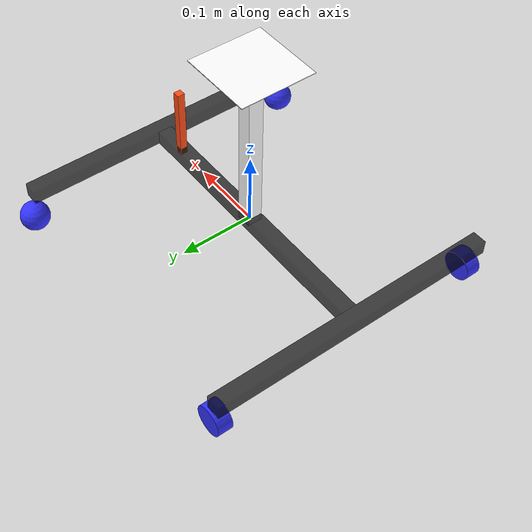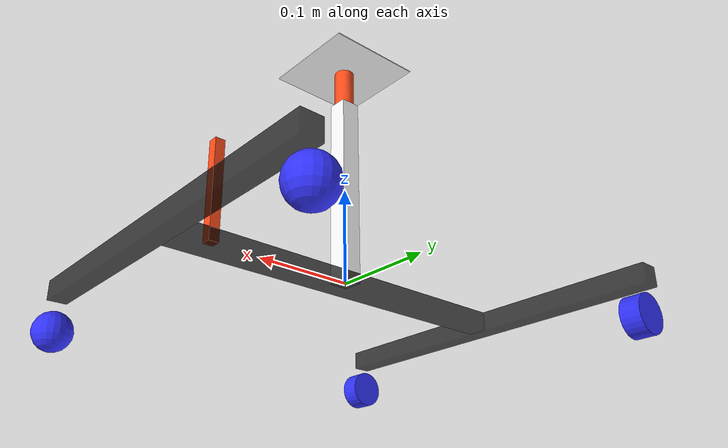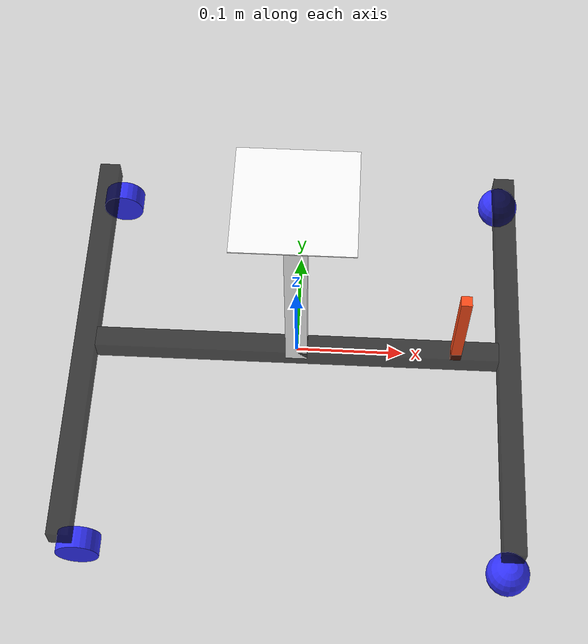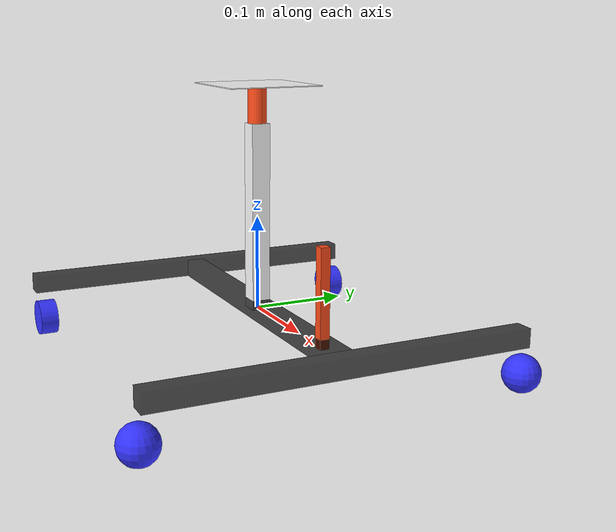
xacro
<?xml version="1.0"?>
<robot xmlns:xacro="http://www.ros.org/wiki/xacro">
   <xacro:include filename="inertial_macros.xacro"/>

    <material name="white">
        <color rgba="1 1 1 1"/>
    </material>

    <material name="orange">
        <color rgba="1 0.3 0.1 1"/>
    </material>

    <material name="blue">
        <color rgba="0.2 0.2 1 1"/>
    </material>

    <material name="black">
        <color rgba="0 0 0 0.7"/>
    </material>

    <!-- BASE LINK -->

    <link name="base_link">

    </link>

    <!-- CHASSIS LINK -->

    <joint name="chassis_joint" type="fixed">
        <parent link="base_link"/>
        <child link="chassis"/>
        <origin xyz="-0.19 0 0"/>
    </joint>

    <link name="chassis">
        <visual>
            <origin xyz="0.19 0 0"/>
            <geometry>
                <box size="0.38 0.02 0.02"/>
            </geometry>
            <material name="black"/>
        </visual>
        <collision>
            <origin xyz="0.19 0 0"/>
            <geometry>
                <box size="0.38 0.02 0.02"/>
            </geometry>
        </collision>
        <xacro:inertial_box mass="0.5" x="0.5" y="0.5" z="0.02">
            <origin xyz="0.19 0 0.01" rpy="0 0 0"/>
        </xacro:inertial_box>
    </link>
    <gazebo reference="chassis">
       <material>Gazebo/Black</material>
    </gazebo>

  <!-- FRONT CHASSIS LINK -->

    <joint name="front_chassis_joint" type="fixed">
        <parent link="base_link"/>
        <child link="front_chassis"/>
        <origin xyz="0.2 0 0"/>
    </joint>

    <link name="front_chassis">
        <visual>
            <origin xyz="0 0 0"/>
            <geometry>
                <box size="0.02 0.4 0.02"/>
            </geometry>
            <material name="black"/>
        </visual>
        <collision>
            <origin xyz="0 0 0"/>
            <geometry>
                <box size="0.02 0.4 0.02"/>
            </geometry>
        </collision>
        <xacro:inertial_box mass="0.5" x="0.5" y="0.5" z="0.02">
            <origin xyz="0 0 0.01" rpy="0 0 0"/>
        </xacro:inertial_box>
    </link>
    <gazebo reference="front_chassis">
       <material>Gazebo/Black</material>
    </gazebo>

     <!--BACK CHASSIS LINK -->

    <joint name="back_chassis_joint" type="fixed">
        <parent link="base_link"/>
        <child link="back_chassis"/>
        <origin xyz="-0.2 0 0"/>
    </joint>

    <link name="back_chassis">
        <visual>
            <origin xyz="0 0 0"/>
            <geometry>
                <box size="0.02 0.4 0.02"/>
            </geometry>
            <material name="black"/>
        </visual>
        <collision>
            <origin xyz="0 0 0"/>
            <geometry>
                <box size="0.02 0.4 0.02"/>
            </geometry>
        </collision>
        <xacro:inertial_box mass="0.5" x="0.5" y="0.5" z="0.02">
            <origin xyz="0 0 0.01" rpy="0 0 0"/>
        </xacro:inertial_box>
    </link>
    <gazebo reference="back_chassis">
       <material>Gazebo/Black</material>
    </gazebo>

     <!-- ROBOT BASE LINK -->

    <joint name="base_joint" type="fixed">
        <parent link="base_link"/>
        <child link="base"/>
        <origin xyz="0 0 0.2"/>
    </joint>

    <link name="base">
        <visual>
            <origin xyz="0 0 -0.1"/>
            <geometry>
                <box size="0.02 0.02 0.2"/>
            </geometry>
            <material name="white"/>
        </visual>
        <collision>
            <origin xyz="0 0 -0.1"/>
            <geometry>
                <box size="0.02 0.02 0.2"/>
            </geometry>
        </collision>
        <xacro:inertial_box mass="0.1" x="0.02" y="0.02" z="0.2">
            <origin xyz="0 0 0.1" rpy="0 0 0"/>
        </xacro:inertial_box>
    </link>
    <gazebo reference="base">
       <material>Gazebo/White</material>
    </gazebo>

    <!-- ROBOT ROLL LINK -->

    <joint name="roll_joint" type="revolute">
        <parent link="base"/>
        <child link="roll"/>
        <origin xyz="0 0 0"/>
        <limit lower="-1" upper="1" effort="10" velocity="3"/>
        <axis xyz="1 0 0"/>
    </joint>

    <link name="roll">
        <visual>
            <origin xyz="0 0 0"/>
            <geometry>
                <box size="0 0 0"/>
            </geometry>
            <material name="white"/>
        </visual>
        <collision>
            <origin xyz="0 0 0"/>
            <geometry>
                <box size="0 0 0"/>
            </geometry>
        </collision>
        <xacro:inertial_box mass="0.09" x="0.05" y="0.02" z="0.02">
            <origin xyz="0.05 0 0" rpy="0 0 0"/>
        </xacro:inertial_box>
    </link>
    <gazebo reference="roll">
       <material>Gazebo/White</material>
    </gazebo>

    <!-- ROBOT PITCH LINK -->

    <joint name="pitch_joint" type="revolute">
        <parent link="roll"/>
        <child link="pitch"/>
        <origin xyz="0 0 0"/>
        <limit lower="-1" upper="1" effort="10" velocity="3"/>
        <axis xyz="0 1 0"/>
    </joint>

    <link name="pitch">
        <visual>
            <origin xyz="0 0 0"/>
            <geometry>
                <box size="0 0 0"/>
            </geometry>
            <material name="white"/>
        </visual>
        <collision>
            <origin xyz="0 0 0"/>
            <geometry>
                <box size="0 0 0"/>
            </geometry>
        </collision>
        <xacro:inertial_box mass="0.09" x="0.02" y="0.05" z="0.02">
            <origin xyz="0 0.05 0" rpy="0 0 0"/>
        </xacro:inertial_box>
    </link>
    <gazebo reference="pitch">
       <material>Gazebo/White</material>
    </gazebo>

        <!-- ROBOT Yaw LINK -->

    <joint name="yaw_joint" type="continuous">
        <parent link="pitch"/>
        <child link="yaw"/>
        <origin xyz="0 0 0.04"/>
        <axis xyz="0 0 1"/>
    </joint>

    <link name="yaw">
        <visual>
            <origin xyz="0 0 -0.02"/>
            <geometry>
                <cylinder radius="0.01" length="0.04"/>
            </geometry>
            <material name="orange"/>
        </visual>
        <collision>
            <origin xyz="0 0 -0.02"/>
            <geometry>
                <cylinder radius="0.01" length="0.04"/>
            </geometry>
        </collision>
        <xacro:inertial_cylinder mass="0.01" length="0.04" radius="0.01">
            <origin xyz="0 0 0" rpy="0 0 0"/>
        </xacro:inertial_cylinder>
    </link>
    <gazebo reference="yaw">
       <material>Gazebo/Orange</material>
    </gazebo>

         <!-- ROBOT PLATE LINK -->

    <joint name="plate_joint" type="fixed">
        <parent link="yaw"/>
        <child link="plate"/>
        <origin xyz="0 0 0"/>
    </joint>

    <link name="plate">
        <visual>
            <origin xyz="0 0 0"/>
            <geometry>
                <box size="0.1 0.1 0.001"/>
            </geometry>
            <material name="white"/>
        </visual>
        <collision>
            <origin xyz="0 0 0"/>
            <geometry>
                <box size="0.1 0.1 0.001"/>
            </geometry>
        </collision>
        <xacro:inertial_box mass="0.09" x="0.02" y="0.05" z="0.02">
            <origin xyz="0 0.05 0" rpy="0 0 0"/>
        </xacro:inertial_box>
    </link>
    <gazebo reference="plate">
       <material>Gazebo/White</material>
    </gazebo>

    <!-- CAMERA BASE LINK -->

    <joint name="camera_base_joint" type="fixed">
        <parent link="base_link"/>
        <child link="camera_base"/>
        <origin xyz="0.15 0 0.1"/>
    </joint>

    <link name="camera_base">
        <visual>
            <origin xyz="0 0 -0.05"/>
            <geometry>
                <box size="0.01 0.01 0.1"/>
            </geometry>
            <material name="orange"/>
        </visual>
        <collision>
            <origin xyz="0 0 -0.05"/>
            <geometry>
                <box size="0.01 0.01 0.1"/>
            </geometry>
        </collision>
        <xacro:inertial_box mass="0.05" x="0.02" y="0.02" z="0.1">
            <origin xyz="0 0 0.05" rpy="0 0 0"/>
        </xacro:inertial_box>
    </link>
    <gazebo reference="camera_base">
       <material>Gazebo/Orange</material>
    </gazebo>

     <!-- LEFT WHEEL LINK -->

    <joint name="left_wheel_joint" type="continuous">
        <parent link="chassis"/>
        <child link="left_wheel"/>
        <origin xyz="0 0.19 -0.04" rpy="-${pi/2} 0 0"/>
        <axis xyz="0 0 1"/>
    </joint>

    <link name="left_wheel">
        <visual>
            <geometry>
                <cylinder radius="0.02" length="0.02"/>
            </geometry>
            <material name="blue"/>
        </visual>
        <collision>
            <geometry>
                <cylinder radius="0.02" length="0.02"/>
            </geometry>
        </collision>
        <xacro:inertial_cylinder mass="0.1" length="0.02" radius="0.02">
            <origin xyz="0 0 0" rpy="0 0 0"/>
        </xacro:inertial_cylinder>

    </link>
    <gazebo reference="left_wheel">
       <material>Gazebo/Blue</material>
    </gazebo>

    <!-- RIGHT WHEEL LINK -->

    <joint name="right_wheel_joint" type="continuous">
        <parent link="chassis"/>
        <child link="right_wheel"/>
        <origin xyz="0 -0.19 -0.04" rpy="${pi/2} 0 0" />
        <axis xyz="0 0 -1"/>
    </joint>

    <link name="right_wheel">
        <visual>
            <geometry>
                <cylinder radius="0.02" length="0.02"/>
            </geometry>
            <material name="blue"/>
        </visual>
        <collision>
            <geometry>
                <cylinder radius="0.02" length="0.02"/>
            </geometry>
        </collision>
        <xacro:inertial_cylinder mass="0.1" length="0.02" radius="0.02">
            <origin xyz="0 0 0" rpy="0 0 0"/>
        </xacro:inertial_cylinder>

    </link>
    <gazebo reference="right_wheel">
       <material>Gazebo/Blue</material>
    </gazebo>

    <!-- FIRST CASTER WHEEL LINK -->

    <joint name="caster_wheel1_joint" type="fixed">
        <parent link="base_link"/>
        <child link="caster_wheel1"/>
        <origin xyz="0.20 -0.2 -0.04"/>
    </joint>

    <link name="caster_wheel1">
        <visual>
            <geometry>
                <sphere radius="0.02"/>
            </geometry>
            <material name="blue"/>
        </visual>
        <collision>
            <geometry>
                <sphere radius="0.02"/>
            </geometry>
        </collision>
        <xacro:inertial_sphere mass="0.1" radius="0.02">
            <origin xyz="0 0 0" rpy="0 0 0"/>
        </xacro:inertial_sphere>

    </link>
    <gazebo reference="caster_wheel1">
       <material>Gazebo/Blue</material>
       <mu1 value="0.001"/>
       <mu2 value="0.001"/>
    </gazebo>

    <!-- SECOND CASTER WHEEL LINK -->

    <joint name="caster_wheel2_joint" type="fixed">
        <parent link="base_link"/>
        <child link="caster_wheel2"/>
        <origin xyz="0.2 0.2 -0.04"/>
    </joint>

    <link name="caster_wheel2">
        <visual>
            <geometry>
                <sphere radius="0.02"/>
            </geometry>
            <material name="blue"/>
        </visual>
        <collision>
            <geometry>
                <sphere radius="0.02"/>
            </geometry>
        </collision>
        <xacro:inertial_sphere mass="0.1" radius="0.02">
            <origin xyz="0 0 0" rpy="0 0 0"/>
        </xacro:inertial_sphere>

    </link>
    <gazebo reference="caster_wheel2">
       <material>Gazebo/Blue</material>
       <mu1 value="0.001"/>
       <mu2 value="0.001"/>
    </gazebo>

</robot>
